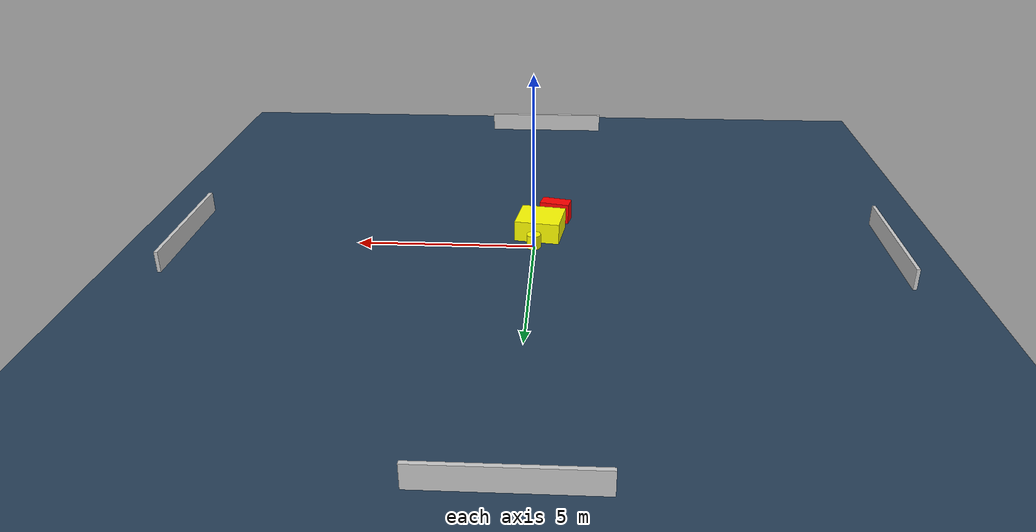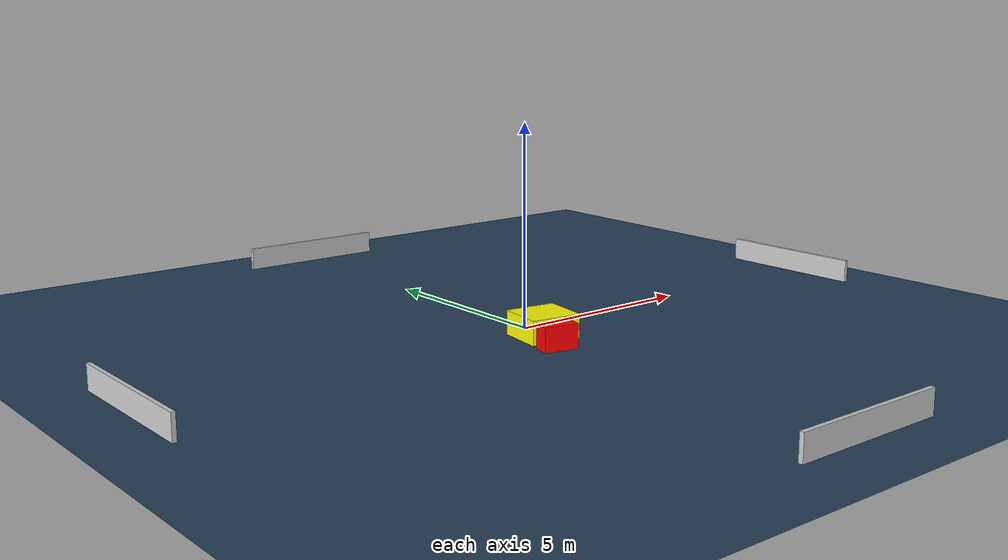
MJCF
<?xml version="1.0" ?>
<mujoco model="generated_environment">
  <option timestep="0.01" integrator="RK4" cone="elliptic"/>
  <default>
    <geom density="1"/>
  </default>
  <asset>
    <texture builtin="gradient" height="3072" name="skybox" rgb1="0.3 0.5 0.7" rgb2="0 0 0" type="skybox" width="512"/>
    <texture builtin="checker" height="300" name="groundplane" rgb1="0.2 0.3 0.4" rgb2="0.1 0.2 0.3" type="2d" width="300"/>
    <material name="groundplane" reflectance="0.2" texrepeat="5 5" texture="groundplane"/>
  </asset>
  <worldbody>
    <light dir="0 0 -1" directional="true" pos="0 0 1.5"/>
    <geom condim="3" friction="0.5 0.005 0.001" material="groundplane" name="floor" pos="0 0 0" size="0 0 0.05" type="plane"/>
    <body name="walls">
      <geom name="wall_1" condim="4" pos="-10.0 0.0 0.3" rgba="0.800000011920929 0.800000011920929 0.800000011920929 1.0" size="0.05 2.0 0.3" type="box"/>
      <geom name="wall_2" condim="4" pos="10.0 0.0 0.3" rgba="0.800000011920929 0.800000011920929 0.800000011920929 1.0" size="0.05 2.0 0.3" type="box"/>
      <geom name="wall_3" condim="4" pos="0.0 -10.0 0.3" rgba="0.800000011920929 0.800000011920929 0.800000011920929 1.0" size="2.0 0.05 0.3" type="box"/>
      <geom name="wall_4" condim="4" pos="0.0 10.0 0.3" rgba="0.800000011920929 0.800000011920929 0.800000011920929 1.0" size="2.0 0.05 0.3" type="box"/>
    </body>
    <body name="robot">
      <joint name="joint_x" type="slide" pos="0 0 0" axis="1 0 0"/>
      <joint name="joint_y" type="slide" pos="0 0 0" axis="0 1 0"/>
      <geom name="robot" type="cylinder" pos="0.0 0.0 0.2" size="0.2 0.2 0.0" mass="5.0" friction="1.0 0.005 0.0001" condim="4" rgba="1.0 1.0 0.0 1.0"/>
    </body>
    <body name="obstacle_1_movable">
      <geom name="obstacle_1_movable" condim="4" pos="-0.15295101868952865 -0.8717010265933959 0.3" euler="0 0 171.5287287539537" friction="0.0 0.005 0.001" rgba="1.0 1.0 0.0 1.0" size="0.642686502165944 0.5947377822179869 0.3" type="box" mass="0.1"/>
      <joint type="free"/>
    </body>
    <body name="obstacle_2_static">
      <geom name="obstacle_2_static" condim="4" pos="-0.5721425076997136 -1.8762980176168087 0.3" euler="0 0 166.93870684367815" friction="0.0 0.005 0.001" rgba="1.0 0.0 0.0 1.0" size="0.4330362687236935 0.2125610336405132 0.3" type="box"/>
    </body>
  </worldbody>
  <actuator>
    <motor name="actuator_x" joint="joint_x" gear="1" ctrlrange="-1 1"/>
    <motor name="actuator_y" joint="joint_y" gear="1" ctrlrange="-1 1"/>
  </actuator>
</mujoco>
